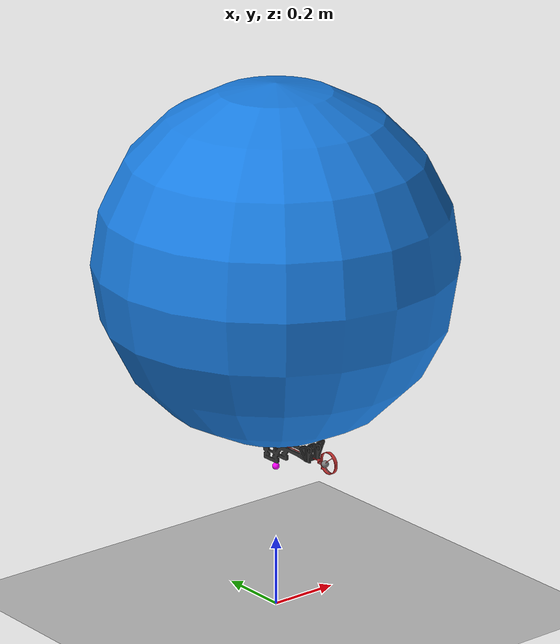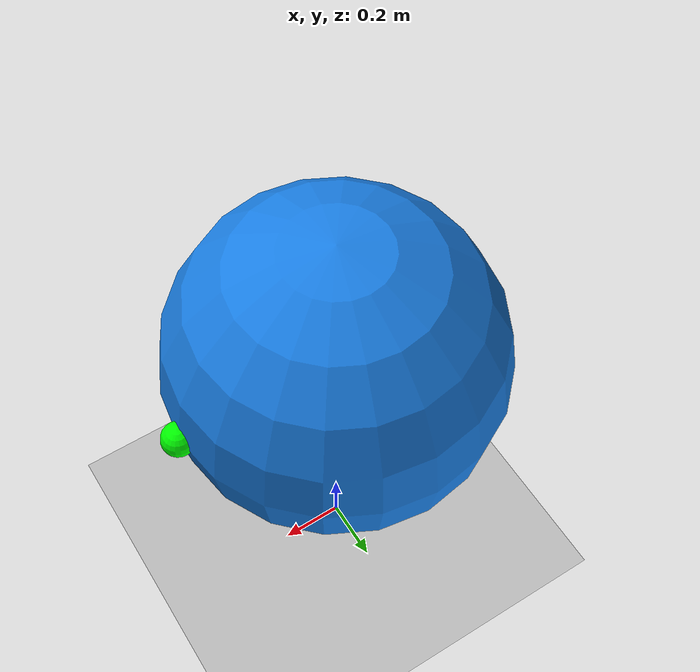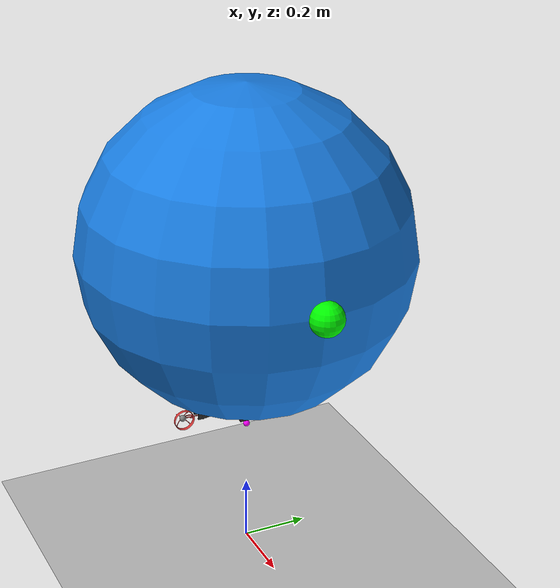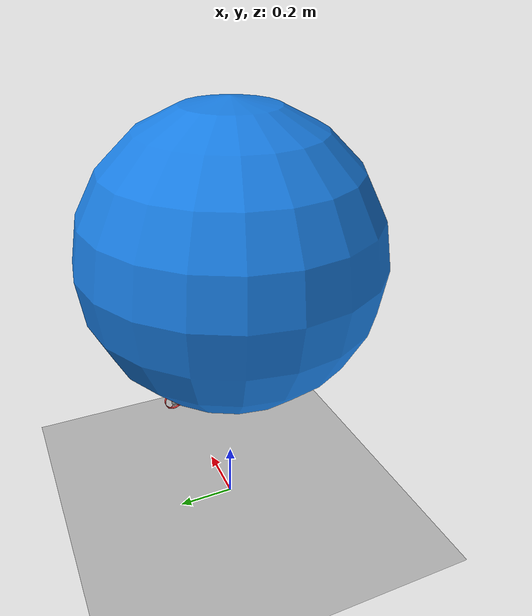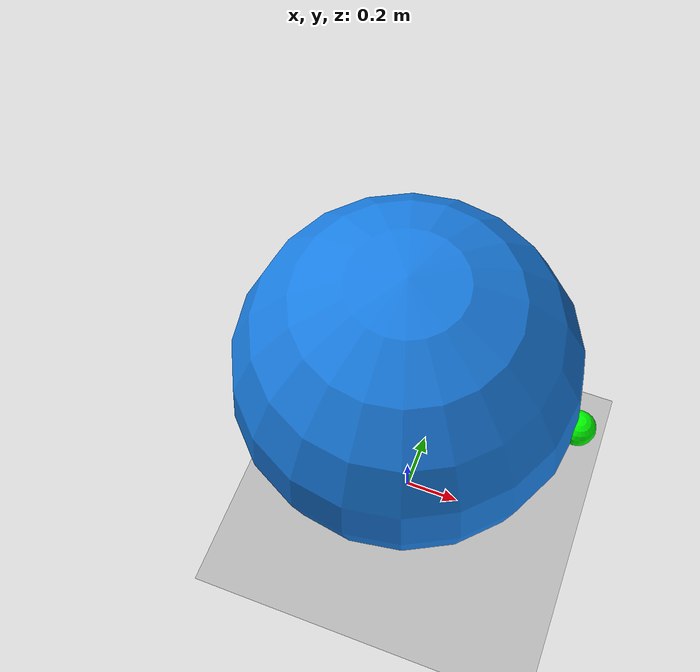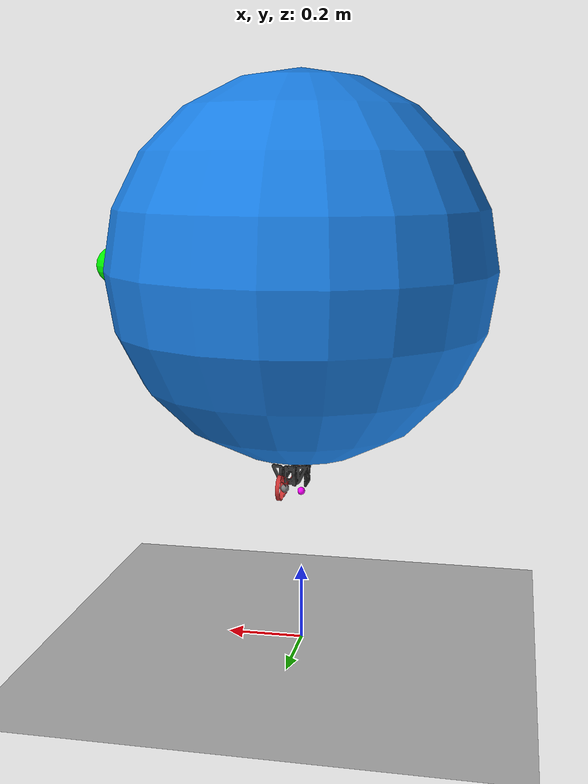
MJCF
<mujoco model="mochi">
  <compiler angle="degree" meshdir="./meshes/" /> <!-- only for initial values, then uses radians -->

  <option gravity="0 0 -9.81" integrator="implicit" timestep="0.01" density="1.225"
    viscosity="0.0000181" /> <!-- density and viscosity of air -->

  <asset>
    <texture type="skybox" builtin="gradient" rgb1=".4 .6 .8" rgb2="0 0 0" width="800"
      height="800" />
    <!-- Checkerboard texture for floor to improve motion perception -->
    <texture name="floor_tex" type="2d" builtin="checker" rgb1="0.85 0.85 0.85" rgb2="0.6 0.6 0.6"
      width="512" height="512" />
    <!-- Material using the checker texture; texrepeat scales the pattern across the plane size -->
    <material name="floor_mat" texture="floor_tex" texrepeat="20 10" specular="0" shininess="0"
      rgba="1 1 1 1" />
    <material name="balloon_mat" specular="2" shininess=".2" reflectance="0.8"
      rgba="0.1 0.5 0.9 1" />
    <material name="frame_mat" rgba="0.2 0.2 0.2 1" />
    <material name="motors_mat" rgba="0.8 0.2 0.2 1" />
    <mesh name="frame_mesh" file="frame.stl" />
    <mesh name="motors_mesh" file="motors.stl" />
  </asset>

  <worldbody>
    <light directional="true" pos="0 0 10" dir="0 0 -1" />

    <body name="environment">
      <!-- Apply non-solid checkerboard material to the floor to make motion visible -->
      <geom name="floor" type="plane" size="20 10 0.1" material="floor_mat" />
    </body>

    <body name="blimp" pos="0 0 1" gravcomp="3.2872"> <!-- buoyant force (unitless)-->
      <freejoint />
      <geom name="balloon" type="sphere" size="0.5" material="balloon_mat" density="0.167"
        fluidshape="ellipsoid" />
      <site name="front_marker_site" pos=".5 0 0" size="0.05" rgba="0 1 0 1" />
      <body name="assembly" pos="0 0 -0.52">
        <body name="frame">
          <!-- rotate so X axis is nose to tail -->
          <geom type="mesh" mesh="frame_mesh" material="frame_mat" mass="0.15"
            euler="0 0 90" />
        </body>

        <body name="motors">
          <joint name="motors_axle" type="hinge" axis="0 -1 0" range="-180 180" />
          <!-- rotate so X axis is nose to tail -->
          <geom type="mesh" mesh="motors_mesh" material="motors_mat" mass="0.05"
            euler="0 90 90" />

          <site name="motor_left_site" pos="0 0.21 0" size="0.01" />
          <site name="motor_right_site" pos="0 -0.21 0" size="0.01" />
        </body>

        <camera name="nicla_vision" pos="0 0 -.07" euler="90 270 0" />
        <site name="camera_site" size="0.01" rgba="1 0 1 1" pos="0 0 -.07" />

        <site name="imu_site" />
      </body>
    </body>
  </worldbody>

  <actuator>
    <position name="motors_servo" joint="motors_axle" kp="0.05" dampratio="1"
      ctrlrange="-3.14159 3.14159" />

    <general name="motor_left_thrust" site="motor_left_site" gear="1 0 0 0 0 0"
      forcerange="0 0.3924" ctrlrange="0 1" /> <!-- 40g of force in Newtons -->
    <general name="motor_right_thrust" site="motor_right_site" gear="1 0 0 0 0 0"
      forcerange="0 0.3924" ctrlrange="0 1" /> <!-- 40g of force in Newtons -->
  </actuator>

  <sensor>
    <framepos name="imu_pos" objtype="site" objname="imu_site" />
    <framelinvel name="imu_lin_vel" objtype="site" objname="imu_site" />
    <frameangvel name="imu_ang_vel" objtype="site" objname="imu_site" />
    <framequat name="imu_quat" objtype="site" objname="imu_site" />
  </sensor>
</mujoco>
